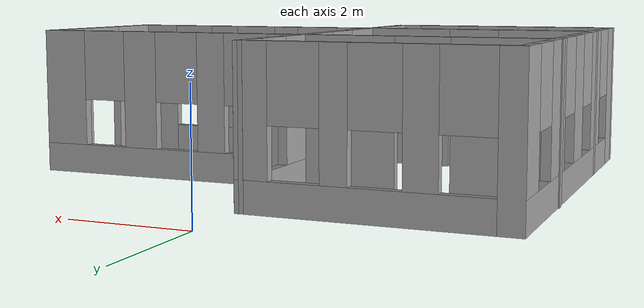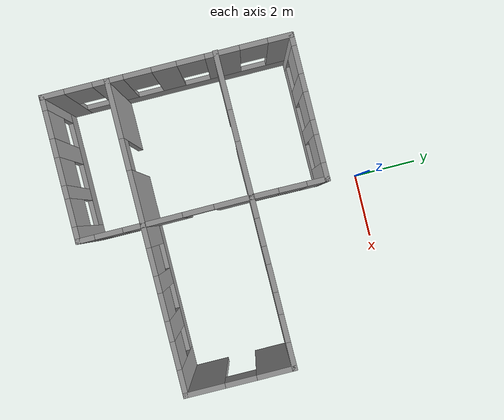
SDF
<?xml version='1.0'?>
<sdf version='1.6'>
  <model name='office'>
    <pose frame=''>0.324943 -4.86965 0 0 -0 0</pose>
    <link name='Wall_10'>
      <pose frame=''>-4.46494 -0.000349 0 0 -0 1.5708</pose>
      <visual name='Wall_10_Visual_0'>
        <pose frame=''>-3.27003 0 1.25 0 -0 0</pose>
        <geometry>
          <box>
            <size>0.709946 0.15 2.5</size>
          </box>
        </geometry>
        <material>
          <script>
            <uri>file://media/materials/scripts/gazebo.material</uri>
            <name>Gazebo/Grey</name>
          </script>
          <ambient>1 1 1 1</ambient>
        </material>
        <meta>
          <layer>0</layer>
        </meta>
      </visual>
      <collision name='Wall_10_Collision_0'>
        <geometry>
          <box>
            <size>0.709946 0.15 2.5</size>
          </box>
        </geometry>
        <pose frame=''>-3.27003 0 1.25 0 -0 0</pose>
      </collision>
      <visual name='Wall_10_Visual_1'>
        <pose frame=''>0.354973 0 0.25 0 -0 0</pose>
        <geometry>
          <box>
            <size>6.54005 0.15 0.5</size>
          </box>
        </geometry>
        <material>
          <script>
            <uri>file://media/materials/scripts/gazebo.material</uri>
            <name>Gazebo/Grey</name>
          </script>
          <ambient>1 1 1 1</ambient>
        </material>
        <meta>
          <layer>0</layer>
        </meta>
      </visual>
      <collision name='Wall_10_Collision_1'>
        <geometry>
          <box>
            <size>6.54005 0.15 0.5</size>
          </box>
        </geometry>
        <pose frame=''>0.354973 0 0.25 0 -0 0</pose>
      </collision>
      <visual name='Wall_10_Visual_2'>
        <pose frame=''>-1.67555 0 1.5 0 -0 0</pose>
        <geometry>
          <box>
            <size>0.879 0.15 2</size>
          </box>
        </geometry>
        <material>
          <script>
            <uri>file://media/materials/scripts/gazebo.material</uri>
            <name>Gazebo/Grey</name>
          </script>
          <ambient>1 1 1 1</ambient>
        </material>
        <meta>
          <layer>0</layer>
        </meta>
      </visual>
      <collision name='Wall_10_Collision_2'>
        <geometry>
          <box>
            <size>0.879 0.15 2</size>
          </box>
        </geometry>
        <pose frame=''>-1.67555 0 1.5 0 -0 0</pose>
      </collision>
      <visual name='Wall_10_Visual_3'>
        <pose frame=''>-0.077054 0 1.5 0 -0 0</pose>
        <geometry>
          <box>
            <size>0.718 0.15 2</size>
          </box>
        </geometry>
        <material>
          <script>
            <uri>file://media/materials/scripts/gazebo.material</uri>
            <name>Gazebo/Grey</name>
          </script>
          <ambient>1 1 1 1</ambient>
        </material>
        <meta>
          <layer>0</layer>
        </meta>
      </visual>
      <collision name='Wall_10_Collision_3'>
        <geometry>
          <box>
            <size>0.718 0.15 2</size>
          </box>
        </geometry>
        <pose frame=''>-0.077054 0 1.5 0 -0 0</pose>
      </collision>
      <visual name='Wall_10_Visual_4'>
        <pose frame=''>1.57895 0 1.5 0 -0 0</pose>
        <geometry>
          <box>
            <size>0.994 0.15 2</size>
          </box>
        </geometry>
        <material>
          <script>
            <uri>file://media/materials/scripts/gazebo.material</uri>
            <name>Gazebo/Grey</name>
          </script>
          <ambient>1 1 1 1</ambient>
        </material>
        <meta>
          <layer>0</layer>
        </meta>
      </visual>
      <collision name='Wall_10_Collision_4'>
        <geometry>
          <box>
            <size>0.994 0.15 2</size>
          </box>
        </geometry>
        <pose frame=''>1.57895 0 1.5 0 -0 0</pose>
      </collision>
      <visual name='Wall_10_Visual_5'>
        <pose frame=''>3.25047 0 1.5 0 -0 0</pose>
        <geometry>
          <box>
            <size>0.749054 0.15 2</size>
          </box>
        </geometry>
        <material>
          <script>
            <uri>file://media/materials/scripts/gazebo.material</uri>
            <name>Gazebo/Grey</name>
          </script>
          <ambient>1 1 1 1</ambient>
        </material>
        <meta>
          <layer>0</layer>
        </meta>
      </visual>
      <collision name='Wall_10_Collision_5'>
        <geometry>
          <box>
            <size>0.749054 0.15 2</size>
          </box>
        </geometry>
        <pose frame=''>3.25047 0 1.5 0 -0 0</pose>
      </collision>
      <visual name='Wall_10_Visual_6'>
        <pose frame=''>-2.51505 0 1.9 0 -0 0</pose>
        <geometry>
          <box>
            <size>0.8 0.15 1.2</size>
          </box>
        </geometry>
        <material>
          <script>
            <uri>file://media/materials/scripts/gazebo.material</uri>
            <name>Gazebo/Grey</name>
          </script>
          <ambient>1 1 1 1</ambient>
        </material>
        <meta>
          <layer>0</layer>
        </meta>
      </visual>
      <collision name='Wall_10_Collision_6'>
        <geometry>
          <box>
            <size>0.8 0.15 1.2</size>
          </box>
        </geometry>
        <pose frame=''>-2.51505 0 1.9 0 -0 0</pose>
      </collision>
      <visual name='Wall_10_Visual_7'>
        <pose frame=''>-0.836054 0 1.9 0 -0 0</pose>
        <geometry>
          <box>
            <size>0.8 0.15 1.2</size>
          </box>
        </geometry>
        <material>
          <script>
            <uri>file://media/materials/scripts/gazebo.material</uri>
            <name>Gazebo/Grey</name>
          </script>
          <ambient>1 1 1 1</ambient>
        </material>
        <meta>
          <layer>0</layer>
        </meta>
      </visual>
      <collision name='Wall_10_Collision_7'>
        <geometry>
          <box>
            <size>0.8 0.15 1.2</size>
          </box>
        </geometry>
        <pose frame=''>-0.836054 0 1.9 0 -0 0</pose>
      </collision>
      <visual name='Wall_10_Visual_8'>
        <pose frame=''>0.681946 0 1.9 0 -0 0</pose>
        <geometry>
          <box>
            <size>0.8 0.15 1.2</size>
          </box>
        </geometry>
        <material>
          <script>
            <uri>file://media/materials/scripts/gazebo.material</uri>
            <name>Gazebo/Grey</name>
          </script>
          <ambient>1 1 1 1</ambient>
        </material>
        <meta>
          <layer>0</layer>
        </meta>
      </visual>
      <collision name='Wall_10_Collision_8'>
        <geometry>
          <box>
            <size>0.8 0.15 1.2</size>
          </box>
        </geometry>
        <pose frame=''>0.681946 0 1.9 0 -0 0</pose>
      </collision>
      <visual name='Wall_10_Visual_9'>
        <pose frame=''>2.47595 0 1.9 0 -0 0</pose>
        <geometry>
          <box>
            <size>0.8 0.15 1.2</size>
          </box>
        </geometry>
        <material>
          <script>
            <uri>file://media/materials/scripts/gazebo.material</uri>
            <name>Gazebo/Grey</name>
          </script>
          <ambient>1 1 1 1</ambient>
        </material>
        <meta>
          <layer>0</layer>
        </meta>
      </visual>
      <collision name='Wall_10_Collision_9'>
        <geometry>
          <box>
            <size>0.8 0.15 1.2</size>
          </box>
        </geometry>
        <pose frame=''>2.47595 0 1.9 0 -0 0</pose>
      </collision>
    </link>
    <link name='Wall_12'>
      <pose frame=''>-2.41494 3.54965 0 0 -0 0</pose>
      <visual name='Wall_12_Visual_0'>
        <pose frame=''>-1.93281 0 1.25 0 -0 0</pose>
        <geometry>
          <box>
            <size>0.38438 0.15 2.5</size>
          </box>
        </geometry>
        <material>
          <script>
            <uri>file://media/materials/scripts/gazebo.material</uri>
            <name>Gazebo/Grey</name>
          </script>
          <ambient>1 1 1 1</ambient>
        </material>
        <meta>
          <layer>0</layer>
        </meta>
      </visual>
      <collision name='Wall_12_Collision_0'>
        <geometry>
          <box>
            <size>0.38438 0.15 2.5</size>
          </box>
        </geometry>
        <pose frame=''>-1.93281 0 1.25 0 -0 0</pose>
      </collision>
      <visual name='Wall_12_Visual_1'>
        <pose frame=''>0.19219 0 0.25 0 -0 0</pose>
        <geometry>
          <box>
            <size>3.86562 0.15 0.5</size>
          </box>
        </geometry>
        <material>
          <script>
            <uri>file://media/materials/scripts/gazebo.material</uri>
            <name>Gazebo/Grey</name>
          </script>
          <ambient>1 1 1 1</ambient>
        </material>
        <meta>
          <layer>0</layer>
        </meta>
      </visual>
      <collision name='Wall_12_Collision_1'>
        <geometry>
          <box>
            <size>3.86562 0.15 0.5</size>
          </box>
        </geometry>
        <pose frame=''>0.19219 0 0.25 0 -0 0</pose>
      </collision>
      <visual name='Wall_12_Visual_2'>
        <pose frame=''>-0.68512 0 1.5 0 -0 0</pose>
        <geometry>
          <box>
            <size>0.511 0.15 2</size>
          </box>
        </geometry>
        <material>
          <script>
            <uri>file://media/materials/scripts/gazebo.material</uri>
            <name>Gazebo/Grey</name>
          </script>
          <ambient>1 1 1 1</ambient>
        </material>
        <meta>
          <layer>0</layer>
        </meta>
      </visual>
      <collision name='Wall_12_Collision_2'>
        <geometry>
          <box>
            <size>0.511 0.15 2</size>
          </box>
        </geometry>
        <pose frame=''>-0.68512 0 1.5 0 -0 0</pose>
      </collision>
      <visual name='Wall_12_Visual_3'>
        <pose frame=''>0.57988 0 1.5 0 -0 0</pose>
        <geometry>
          <box>
            <size>0.419 0.15 2</size>
          </box>
        </geometry>
        <material>
          <script>
            <uri>file://media/materials/scripts/gazebo.material</uri>
            <name>Gazebo/Grey</name>
          </script>
          <ambient>1 1 1 1</ambient>
        </material>
        <meta>
          <layer>0</layer>
        </meta>
      </visual>
      <collision name='Wall_12_Collision_3'>
        <geometry>
          <box>
            <size>0.419 0.15 2</size>
          </box>
        </geometry>
        <pose frame=''>0.57988 0 1.5 0 -0 0</pose>
      </collision>
      <visual name='Wall_12_Visual_4'>
        <pose frame=''>1.85719 0 1.5 0 -0 0</pose>
        <geometry>
          <box>
            <size>0.53562 0.15 2</size>
          </box>
        </geometry>
        <material>
          <script>
            <uri>file://media/materials/scripts/gazebo.material</uri>
            <name>Gazebo/Grey</name>
          </script>
          <ambient>1 1 1 1</ambient>
        </material>
        <meta>
          <layer>0</layer>
        </meta>
      </visual>
      <collision name='Wall_12_Collision_4'>
        <geometry>
          <box>
            <size>0.53562 0.15 2</size>
          </box>
        </geometry>
        <pose frame=''>1.85719 0 1.5 0 -0 0</pose>
      </collision>
      <visual name='Wall_12_Visual_5'>
        <pose frame=''>-1.34062 0 1.9 0 -0 0</pose>
        <geometry>
          <box>
            <size>0.8 0.15 1.2</size>
          </box>
        </geometry>
        <material>
          <script>
            <uri>file://media/materials/scripts/gazebo.material</uri>
            <name>Gazebo/Grey</name>
          </script>
          <ambient>1 1 1 1</ambient>
        </material>
        <meta>
          <layer>0</layer>
        </meta>
      </visual>
      <collision name='Wall_12_Collision_5'>
        <geometry>
          <box>
            <size>0.8 0.15 1.2</size>
          </box>
        </geometry>
        <pose frame=''>-1.34062 0 1.9 0 -0 0</pose>
      </collision>
      <visual name='Wall_12_Visual_6'>
        <pose frame=''>-0.02962 0 1.9 0 -0 0</pose>
        <geometry>
          <box>
            <size>0.8 0.15 1.2</size>
          </box>
        </geometry>
        <material>
          <script>
            <uri>file://media/materials/scripts/gazebo.material</uri>
            <name>Gazebo/Grey</name>
          </script>
          <ambient>1 1 1 1</ambient>
        </material>
        <meta>
          <layer>0</layer>
        </meta>
      </visual>
      <collision name='Wall_12_Collision_6'>
        <geometry>
          <box>
            <size>0.8 0.15 1.2</size>
          </box>
        </geometry>
        <pose frame=''>-0.02962 0 1.9 0 -0 0</pose>
      </collision>
      <visual name='Wall_12_Visual_7'>
        <pose frame=''>1.18938 0 1.9 0 -0 0</pose>
        <geometry>
          <box>
            <size>0.8 0.15 1.2</size>
          </box>
        </geometry>
        <material>
          <script>
            <uri>file://media/materials/scripts/gazebo.material</uri>
            <name>Gazebo/Grey</name>
          </script>
          <ambient>1 1 1 1</ambient>
        </material>
        <meta>
          <layer>0</layer>
        </meta>
      </visual>
      <collision name='Wall_12_Collision_7'>
        <geometry>
          <box>
            <size>0.8 0.15 1.2</size>
          </box>
        </geometry>
        <pose frame=''>1.18938 0 1.9 0 -0 0</pose>
      </collision>
    </link>
    <link name='Wall_14'>
      <pose frame=''>-0.375 2.47465 0 0 0 -1.58015</pose>
      <visual name='Wall_14_Visual_0'>
        <pose frame=''>-0.821604 0 1.25 0 -0 0</pose>
        <geometry>
          <box>
            <size>0.656885 0.15 2.5</size>
          </box>
        </geometry>
        <material>
          <script>
            <uri>file://media/materials/scripts/gazebo.material</uri>
            <name>Gazebo/Grey</name>
          </script>
          <ambient>1 1 1 1</ambient>
        </material>
        <meta>
          <layer>0</layer>
        </meta>
      </visual>
      <collision name='Wall_14_Collision_0'>
        <geometry>
          <box>
            <size>0.656885 0.15 2.5</size>
          </box>
        </geometry>
        <pose frame=''>-0.821604 0 1.25 0 -0 0</pose>
      </collision>
      <visual name='Wall_14_Visual_1'>
        <pose frame=''>0.328443 0 0.25 0 -0 0</pose>
        <geometry>
          <box>
            <size>1.64321 0.15 0.5</size>
          </box>
        </geometry>
        <material>
          <script>
            <uri>file://media/materials/scripts/gazebo.material</uri>
            <name>Gazebo/Grey</name>
          </script>
          <ambient>1 1 1 1</ambient>
        </material>
        <meta>
          <layer>0</layer>
        </meta>
      </visual>
      <collision name='Wall_14_Collision_1'>
        <geometry>
          <box>
            <size>1.64321 0.15 0.5</size>
          </box>
        </geometry>
        <pose frame=''>0.328443 0 0.25 0 -0 0</pose>
      </collision>
      <visual name='Wall_14_Visual_2'>
        <pose frame=''>0.728443 0 1.5 0 -0 0</pose>
        <geometry>
          <box>
            <size>0.843209 0.15 2</size>
          </box>
        </geometry>
        <material>
          <script>
            <uri>file://media/materials/scripts/gazebo.material</uri>
            <name>Gazebo/Grey</name>
          </script>
          <ambient>1 1 1 1</ambient>
        </material>
        <meta>
          <layer>0</layer>
        </meta>
      </visual>
      <collision name='Wall_14_Collision_2'>
        <geometry>
          <box>
            <size>0.843209 0.15 2</size>
          </box>
        </geometry>
        <pose frame=''>0.728443 0 1.5 0 -0 0</pose>
      </collision>
      <visual name='Wall_14_Visual_3'>
        <pose frame=''>-0.093162 0 1.9 0 -0 0</pose>
        <geometry>
          <box>
            <size>0.8 0.15 1.2</size>
          </box>
        </geometry>
        <material>
          <script>
            <uri>file://media/materials/scripts/gazebo.material</uri>
            <name>Gazebo/Grey</name>
          </script>
          <ambient>1 1 1 1</ambient>
        </material>
        <meta>
          <layer>0</layer>
        </meta>
      </visual>
      <collision name='Wall_14_Collision_3'>
        <geometry>
          <box>
            <size>0.8 0.15 1.2</size>
          </box>
        </geometry>
        <pose frame=''>-0.093162 0 1.9 0 -0 0</pose>
      </collision>
    </link>
    <link name='Wall_16'>
      <pose frame=''>-0.375 -0.150349 0 0 -0 1.57729</pose>
      <visual name='Wall_16_Visual_0'>
        <pose frame=''>-1.02427 0 1.25 0 -0 0</pose>
        <geometry>
          <box>
            <size>1.20153 0.15 2.5</size>
          </box>
        </geometry>
        <material>
          <script>
            <uri>file://media/materials/scripts/gazebo.material</uri>
            <name>Gazebo/Grey</name>
          </script>
          <ambient>1 1 1 1</ambient>
        </material>
        <meta>
          <layer>0</layer>
        </meta>
      </visual>
      <collision name='Wall_16_Collision_0'>
        <geometry>
          <box>
            <size>1.20153 0.15 2.5</size>
          </box>
        </geometry>
        <pose frame=''>-1.02427 0 1.25 0 -0 0</pose>
      </collision>
      <visual name='Wall_16_Visual_1'>
        <pose frame=''>1.05076 0 1.25 0 -0 0</pose>
        <geometry>
          <box>
            <size>1.14854 0.15 2.5</size>
          </box>
        </geometry>
        <material>
          <script>
            <uri>file://media/materials/scripts/gazebo.material</uri>
            <name>Gazebo/Grey</name>
          </script>
          <ambient>1 1 1 1</ambient>
        </material>
        <meta>
          <layer>0</layer>
        </meta>
      </visual>
      <collision name='Wall_16_Collision_1'>
        <geometry>
          <box>
            <size>1.14854 0.15 2.5</size>
          </box>
        </geometry>
        <pose frame=''>1.05076 0 1.25 0 -0 0</pose>
      </collision>
      <visual name='Wall_16_Visual_2'>
        <pose frame=''>0.026496 0 2.25 0 -0 0</pose>
        <geometry>
          <box>
            <size>0.9 0.15 0.5</size>
          </box>
        </geometry>
        <material>
          <script>
            <uri>file://media/materials/scripts/gazebo.material</uri>
            <name>Gazebo/Grey</name>
          </script>
          <ambient>1 1 1 1</ambient>
        </material>
        <meta>
          <layer>0</layer>
        </meta>
      </visual>
      <collision name='Wall_16_Collision_2'>
        <geometry>
          <box>
            <size>0.9 0.15 0.5</size>
          </box>
        </geometry>
        <pose frame=''>0.026496 0 2.25 0 -0 0</pose>
      </collision>
    </link>
    <link name='Wall_17'>
      <pose frame=''>-2.43506 1.39965 0 0 -0 3.14159</pose>
      <visual name='Wall_17_Visual_0'>
        <pose frame=''>-1.29425 0 1.25 0 -0 0</pose>
        <geometry>
          <box>
            <size>1.66151 0.15 2.5</size>
          </box>
        </geometry>
        <material>
          <script>
            <uri>file://media/materials/scripts/gazebo.material</uri>
            <name>Gazebo/Grey</name>
          </script>
          <ambient>1 1 1 1</ambient>
        </material>
        <meta>
          <layer>0</layer>
        </meta>
      </visual>
      <collision name='Wall_17_Collision_0'>
        <geometry>
          <box>
            <size>1.66151 0.15 2.5</size>
          </box>
        </geometry>
        <pose frame=''>-1.29425 0 1.25 0 -0 0</pose>
      </collision>
      <visual name='Wall_17_Visual_1'>
        <pose frame=''>1.28075 0 1.25 0 -0 0</pose>
        <geometry>
          <box>
            <size>1.68849 0.15 2.5</size>
          </box>
        </geometry>
        <material>
          <script>
            <uri>file://media/materials/scripts/gazebo.material</uri>
            <name>Gazebo/Grey</name>
          </script>
          <ambient>1 1 1 1</ambient>
        </material>
        <meta>
          <layer>0</layer>
        </meta>
      </visual>
      <collision name='Wall_17_Collision_1'>
        <geometry>
          <box>
            <size>1.68849 0.15 2.5</size>
          </box>
        </geometry>
        <pose frame=''>1.28075 0 1.25 0 -0 0</pose>
      </collision>
      <visual name='Wall_17_Visual_2'>
        <pose frame=''>-0.013494 0 2.25 0 -0 0</pose>
        <geometry>
          <box>
            <size>0.9 0.15 0.5</size>
          </box>
        </geometry>
        <material>
          <script>
            <uri>file://media/materials/scripts/gazebo.material</uri>
            <name>Gazebo/Grey</name>
          </script>
          <ambient>1 1 1 1</ambient>
        </material>
        <meta>
          <layer>0</layer>
        </meta>
      </visual>
      <collision name='Wall_17_Collision_2'>
        <geometry>
          <box>
            <size>0.9 0.15 0.5</size>
          </box>
        </geometry>
        <pose frame=''>-0.013494 0 2.25 0 -0 0</pose>
      </collision>
    </link>
    <link name='Wall_19'>
      <pose frame=''>-2.41494 -1.70035 0 0 -0 3.14159</pose>
      <visual name='Wall_19_Visual_0'>
        <pose frame=''>-1.30719 0 1.25 0 -0 0</pose>
        <geometry>
          <box>
            <size>1.63562 0.15 2.5</size>
          </box>
        </geometry>
        <material>
          <script>
            <uri>file://media/materials/scripts/gazebo.material</uri>
            <name>Gazebo/Grey</name>
          </script>
          <ambient>1 1 1 1</ambient>
        </material>
        <meta>
          <layer>0</layer>
        </meta>
      </visual>
      <collision name='Wall_19_Collision_0'>
        <geometry>
          <box>
            <size>1.63562 0.15 2.5</size>
          </box>
        </geometry>
        <pose frame=''>-1.30719 0 1.25 0 -0 0</pose>
      </collision>
      <visual name='Wall_19_Visual_1'>
        <pose frame=''>1.26781 0 1.25 0 -0 0</pose>
        <geometry>
          <box>
            <size>1.71438 0.15 2.5</size>
          </box>
        </geometry>
        <material>
          <script>
            <uri>file://media/materials/scripts/gazebo.material</uri>
            <name>Gazebo/Grey</name>
          </script>
          <ambient>1 1 1 1</ambient>
        </material>
        <meta>
          <layer>0</layer>
        </meta>
      </visual>
      <collision name='Wall_19_Collision_1'>
        <geometry>
          <box>
            <size>1.71438 0.15 2.5</size>
          </box>
        </geometry>
        <pose frame=''>1.26781 0 1.25 0 -0 0</pose>
      </collision>
      <visual name='Wall_19_Visual_2'>
        <pose frame=''>-0.03938 0 2.25 0 -0 0</pose>
        <geometry>
          <box>
            <size>0.9 0.15 0.5</size>
          </box>
        </geometry>
        <material>
          <script>
            <uri>file://media/materials/scripts/gazebo.material</uri>
            <name>Gazebo/Grey</name>
          </script>
          <ambient>1 1 1 1</ambient>
        </material>
        <meta>
          <layer>0</layer>
        </meta>
      </visual>
      <collision name='Wall_19_Collision_2'>
        <geometry>
          <box>
            <size>0.9 0.15 0.5</size>
          </box>
        </geometry>
        <pose frame=''>-0.03938 0 2.25 0 -0 0</pose>
      </collision>
    </link>
    <link name='Wall_3'>
      <pose frame=''>2.05 1.39965 0 0 -0 0</pose>
      <visual name='Wall_3_Visual_0'>
        <pose frame=''>-2.17281 0 1.25 0 -0 0</pose>
        <geometry>
          <box>
            <size>0.674494 0.15 2.5</size>
          </box>
        </geometry>
        <material>
          <script>
            <uri>file://media/materials/scripts/gazebo.material</uri>
            <name>Gazebo/Grey</name>
          </script>
          <ambient>1 1 1 1</ambient>
        </material>
        <meta>
          <layer>0</layer>
        </meta>
      </visual>
      <collision name='Wall_3_Collision_0'>
        <geometry>
          <box>
            <size>0.674494 0.15 2.5</size>
          </box>
        </geometry>
        <pose frame=''>-2.17281 0 1.25 0 -0 0</pose>
      </collision>
      <visual name='Wall_3_Visual_1'>
        <pose frame=''>0.337247 0 0.25 0 -0 0</pose>
        <geometry>
          <box>
            <size>4.34562 0.15 0.5</size>
          </box>
        </geometry>
        <material>
          <script>
            <uri>file://media/materials/scripts/gazebo.material</uri>
            <name>Gazebo/Grey</name>
          </script>
          <ambient>1 1 1 1</ambient>
        </material>
        <meta>
          <layer>0</layer>
        </meta>
      </visual>
      <collision name='Wall_3_Collision_1'>
        <geometry>
          <box>
            <size>4.34562 0.15 0.5</size>
          </box>
        </geometry>
        <pose frame=''>0.337247 0 0.25 0 -0 0</pose>
      </collision>
      <visual name='Wall_3_Visual_2'>
        <pose frame=''>-0.780063 0 1.5 0 -0 0</pose>
        <geometry>
          <box>
            <size>0.511 0.15 2</size>
          </box>
        </geometry>
        <material>
          <script>
            <uri>file://media/materials/scripts/gazebo.material</uri>
            <name>Gazebo/Grey</name>
          </script>
          <ambient>1 1 1 1</ambient>
        </material>
        <meta>
          <layer>0</layer>
        </meta>
      </visual>
      <collision name='Wall_3_Collision_2'>
        <geometry>
          <box>
            <size>0.511 0.15 2</size>
          </box>
        </geometry>
        <pose frame=''>-0.780063 0 1.5 0 -0 0</pose>
      </collision>
      <visual name='Wall_3_Visual_3'>
        <pose frame=''>0.588437 0 1.5 0 -0 0</pose>
        <geometry>
          <box>
            <size>0.626 0.15 2</size>
          </box>
        </geometry>
        <material>
          <script>
            <uri>file://media/materials/scripts/gazebo.material</uri>
            <name>Gazebo/Grey</name>
          </script>
          <ambient>1 1 1 1</ambient>
        </material>
        <meta>
          <layer>0</layer>
        </meta>
      </visual>
      <collision name='Wall_3_Collision_3'>
        <geometry>
          <box>
            <size>0.626 0.15 2</size>
          </box>
        </geometry>
        <pose frame=''>0.588437 0 1.5 0 -0 0</pose>
      </collision>
      <visual name='Wall_3_Visual_4'>
        <pose frame=''>2.10575 0 1.5 0 -0 0</pose>
        <geometry>
          <box>
            <size>0.80862 0.15 2</size>
          </box>
        </geometry>
        <material>
          <script>
            <uri>file://media/materials/scripts/gazebo.material</uri>
            <name>Gazebo/Grey</name>
          </script>
          <ambient>1 1 1 1</ambient>
        </material>
        <meta>
          <layer>0</layer>
        </meta>
      </visual>
      <collision name='Wall_3_Collision_4'>
        <geometry>
          <box>
            <size>0.80862 0.15 2</size>
          </box>
        </geometry>
        <pose frame=''>2.10575 0 1.5 0 -0 0</pose>
      </collision>
      <visual name='Wall_3_Visual_5'>
        <pose frame=''>-1.43556 0 1.9 0 -0 0</pose>
        <geometry>
          <box>
            <size>0.8 0.15 1.2</size>
          </box>
        </geometry>
        <material>
          <script>
            <uri>file://media/materials/scripts/gazebo.material</uri>
            <name>Gazebo/Grey</name>
          </script>
          <ambient>1 1 1 1</ambient>
        </material>
        <meta>
          <layer>0</layer>
        </meta>
      </visual>
      <collision name='Wall_3_Collision_5'>
        <geometry>
          <box>
            <size>0.8 0.15 1.2</size>
          </box>
        </geometry>
        <pose frame=''>-1.43556 0 1.9 0 -0 0</pose>
      </collision>
      <visual name='Wall_3_Visual_6'>
        <pose frame=''>-0.124563 0 1.9 0 -0 0</pose>
        <geometry>
          <box>
            <size>0.8 0.15 1.2</size>
          </box>
        </geometry>
        <material>
          <script>
            <uri>file://media/materials/scripts/gazebo.material</uri>
            <name>Gazebo/Grey</name>
          </script>
          <ambient>1 1 1 1</ambient>
        </material>
        <meta>
          <layer>0</layer>
        </meta>
      </visual>
      <collision name='Wall_3_Collision_6'>
        <geometry>
          <box>
            <size>0.8 0.15 1.2</size>
          </box>
        </geometry>
        <pose frame=''>-0.124563 0 1.9 0 -0 0</pose>
      </collision>
      <visual name='Wall_3_Visual_7'>
        <pose frame=''>1.30144 0 1.9 0 -0 0</pose>
        <geometry>
          <box>
            <size>0.8 0.15 1.2</size>
          </box>
        </geometry>
        <material>
          <script>
            <uri>file://media/materials/scripts/gazebo.material</uri>
            <name>Gazebo/Grey</name>
          </script>
          <ambient>1 1 1 1</ambient>
        </material>
        <meta>
          <layer>0</layer>
        </meta>
      </visual>
      <collision name='Wall_3_Collision_7'>
        <geometry>
          <box>
            <size>0.8 0.15 1.2</size>
          </box>
        </geometry>
        <pose frame=''>1.30144 0 1.9 0 -0 0</pose>
      </collision>
    </link>
    <link name='Wall_4'>
      <pose frame=''>4.48506 -0.150349 0 0 0 -1.5708</pose>
      <visual name='Wall_4_Visual_0'>
        <pose frame=''>-1.05097 0 1.25 0 -0 0</pose>
        <geometry>
          <box>
            <size>1.14805 0.15 2.5</size>
          </box>
        </geometry>
        <material>
          <script>
            <uri>file://media/materials/scripts/gazebo.material</uri>
            <name>Gazebo/Grey</name>
          </script>
          <ambient>1 1 1 1</ambient>
        </material>
        <meta>
          <layer>0</layer>
        </meta>
      </visual>
      <collision name='Wall_4_Collision_0'>
        <geometry>
          <box>
            <size>1.14805 0.15 2.5</size>
          </box>
        </geometry>
        <pose frame=''>-1.05097 0 1.25 0 -0 0</pose>
      </collision>
      <visual name='Wall_4_Visual_1'>
        <pose frame=''>1.02403 0 1.25 0 -0 0</pose>
        <geometry>
          <box>
            <size>1.20195 0.15 2.5</size>
          </box>
        </geometry>
        <material>
          <script>
            <uri>file://media/materials/scripts/gazebo.material</uri>
            <name>Gazebo/Grey</name>
          </script>
          <ambient>1 1 1 1</ambient>
        </material>
        <meta>
          <layer>0</layer>
        </meta>
      </visual>
      <collision name='Wall_4_Collision_1'>
        <geometry>
          <box>
            <size>1.20195 0.15 2.5</size>
          </box>
        </geometry>
        <pose frame=''>1.02403 0 1.25 0 -0 0</pose>
      </collision>
      <visual name='Wall_4_Visual_2'>
        <pose frame=''>-0.026947 0 2.25 0 -0 0</pose>
        <geometry>
          <box>
            <size>0.9 0.15 0.5</size>
          </box>
        </geometry>
        <material>
          <script>
            <uri>file://media/materials/scripts/gazebo.material</uri>
            <name>Gazebo/Grey</name>
          </script>
          <ambient>1 1 1 1</ambient>
        </material>
        <meta>
          <layer>0</layer>
        </meta>
      </visual>
      <collision name='Wall_4_Collision_2'>
        <geometry>
          <box>
            <size>0.9 0.15 0.5</size>
          </box>
        </geometry>
        <pose frame=''>-0.026947 0 2.25 0 -0 0</pose>
      </collision>
    </link>
    <link name='Wall_5'>
      <pose frame=''>2.06006 -1.70035 0 0 -0 3.14159</pose>
      <visual name='Wall_5_Visual_0'>
        <pose frame=''>-2.09569 0 1.25 0 -0 0</pose>
        <geometry>
          <box>
            <size>0.80862 0.15 2.5</size>
          </box>
        </geometry>
        <material>
          <script>
            <uri>file://media/materials/scripts/gazebo.material</uri>
            <name>Gazebo/Grey</name>
          </script>
          <ambient>1 1 1 1</ambient>
        </material>
        <meta>
          <layer>0</layer>
        </meta>
      </visual>
      <collision name='Wall_5_Collision_0'>
        <geometry>
          <box>
            <size>0.80862 0.15 2.5</size>
          </box>
        </geometry>
        <pose frame=''>-2.09569 0 1.25 0 -0 0</pose>
      </collision>
      <visual name='Wall_5_Visual_1'>
        <pose frame=''>0.40431 0 0.25 0 -0 0</pose>
        <geometry>
          <box>
            <size>4.19138 0.15 0.5</size>
          </box>
        </geometry>
        <material>
          <script>
            <uri>file://media/materials/scripts/gazebo.material</uri>
            <name>Gazebo/Grey</name>
          </script>
          <ambient>1 1 1 1</ambient>
        </material>
        <meta>
          <layer>0</layer>
        </meta>
      </visual>
      <collision name='Wall_5_Collision_1'>
        <geometry>
          <box>
            <size>4.19138 0.15 0.5</size>
          </box>
        </geometry>
        <pose frame=''>0.40431 0 0.25 0 -0 0</pose>
      </collision>
      <visual name='Wall_5_Visual_2'>
        <pose frame=''>-0.60138 0 1.5 0 -0 0</pose>
        <geometry>
          <box>
            <size>0.58 0.15 2</size>
          </box>
        </geometry>
        <material>
          <script>
            <uri>file://media/materials/scripts/gazebo.material</uri>
            <name>Gazebo/Grey</name>
          </script>
          <ambient>1 1 1 1</ambient>
        </material>
        <meta>
          <layer>0</layer>
        </meta>
      </visual>
      <collision name='Wall_5_Collision_2'>
        <geometry>
          <box>
            <size>0.58 0.15 2</size>
          </box>
        </geometry>
        <pose frame=''>-0.60138 0 1.5 0 -0 0</pose>
      </collision>
      <visual name='Wall_5_Visual_3'>
        <pose frame=''>0.73262 0 1.5 0 -0 0</pose>
        <geometry>
          <box>
            <size>0.488 0.15 2</size>
          </box>
        </geometry>
        <material>
          <script>
            <uri>file://media/materials/scripts/gazebo.material</uri>
            <name>Gazebo/Grey</name>
          </script>
          <ambient>1 1 1 1</ambient>
        </material>
        <meta>
          <layer>0</layer>
        </meta>
      </visual>
      <collision name='Wall_5_Collision_3'>
        <geometry>
          <box>
            <size>0.488 0.15 2</size>
          </box>
        </geometry>
        <pose frame=''>0.73262 0 1.5 0 -0 0</pose>
      </collision>
      <visual name='Wall_5_Visual_4'>
        <pose frame=''>2.13831 0 1.5 0 -0 0</pose>
        <geometry>
          <box>
            <size>0.72338 0.15 2</size>
          </box>
        </geometry>
        <material>
          <script>
            <uri>file://media/materials/scripts/gazebo.material</uri>
            <name>Gazebo/Grey</name>
          </script>
          <ambient>1 1 1 1</ambient>
        </material>
        <meta>
          <layer>0</layer>
        </meta>
      </visual>
      <collision name='Wall_5_Collision_4'>
        <geometry>
          <box>
            <size>0.72338 0.15 2</size>
          </box>
        </geometry>
        <pose frame=''>2.13831 0 1.5 0 -0 0</pose>
      </collision>
      <visual name='Wall_5_Visual_5'>
        <pose frame=''>-1.29138 0 1.9 0 -0 0</pose>
        <geometry>
          <box>
            <size>0.8 0.15 1.2</size>
          </box>
        </geometry>
        <material>
          <script>
            <uri>file://media/materials/scripts/gazebo.material</uri>
            <name>Gazebo/Grey</name>
          </script>
          <ambient>1 1 1 1</ambient>
        </material>
        <meta>
          <layer>0</layer>
        </meta>
      </visual>
      <collision name='Wall_5_Collision_5'>
        <geometry>
          <box>
            <size>0.8 0.15 1.2</size>
          </box>
        </geometry>
        <pose frame=''>-1.29138 0 1.9 0 -0 0</pose>
      </collision>
      <visual name='Wall_5_Visual_6'>
        <pose frame=''>0.08862 0 1.9 0 -0 0</pose>
        <geometry>
          <box>
            <size>0.8 0.15 1.2</size>
          </box>
        </geometry>
        <material>
          <script>
            <uri>file://media/materials/scripts/gazebo.material</uri>
            <name>Gazebo/Grey</name>
          </script>
          <ambient>1 1 1 1</ambient>
        </material>
        <meta>
          <layer>0</layer>
        </meta>
      </visual>
      <collision name='Wall_5_Collision_6'>
        <geometry>
          <box>
            <size>0.8 0.15 1.2</size>
          </box>
        </geometry>
        <pose frame=''>0.08862 0 1.9 0 -0 0</pose>
      </collision>
      <visual name='Wall_5_Visual_7'>
        <pose frame=''>1.37662 0 1.9 0 -0 0</pose>
        <geometry>
          <box>
            <size>0.8 0.15 1.2</size>
          </box>
        </geometry>
        <material>
          <script>
            <uri>file://media/materials/scripts/gazebo.material</uri>
            <name>Gazebo/Grey</name>
          </script>
          <ambient>1 1 1 1</ambient>
        </material>
        <meta>
          <layer>0</layer>
        </meta>
      </visual>
      <collision name='Wall_5_Collision_7'>
        <geometry>
          <box>
            <size>0.8 0.15 1.2</size>
          </box>
        </geometry>
        <pose frame=''>1.37662 0 1.9 0 -0 0</pose>
      </collision>
    </link>
    <link name='Wall_8'>
      <pose frame=''>-0.364943 -2.62535 0 0 0 -1.5708</pose>
      <visual name='Wall_8_Visual_0'>
        <pose frame=''>-0.674473 0 1.25 0 -0 0</pose>
        <geometry>
          <box>
            <size>0.651054 0.15 2.5</size>
          </box>
        </geometry>
        <material>
          <script>
            <uri>file://media/materials/scripts/gazebo.material</uri>
            <name>Gazebo/Grey</name>
          </script>
          <ambient>1 1 1 1</ambient>
        </material>
        <meta>
          <layer>0</layer>
        </meta>
      </visual>
      <collision name='Wall_8_Collision_0'>
        <geometry>
          <box>
            <size>0.651054 0.15 2.5</size>
          </box>
        </geometry>
        <pose frame=''>-0.674473 0 1.25 0 -0 0</pose>
      </collision>
      <visual name='Wall_8_Visual_1'>
        <pose frame=''>0.325527 0 0.25 0 -0 0</pose>
        <geometry>
          <box>
            <size>1.34895 0.15 0.5</size>
          </box>
        </geometry>
        <material>
          <script>
            <uri>file://media/materials/scripts/gazebo.material</uri>
            <name>Gazebo/Grey</name>
          </script>
          <ambient>1 1 1 1</ambient>
        </material>
        <meta>
          <layer>0</layer>
        </meta>
      </visual>
      <collision name='Wall_8_Collision_1'>
        <geometry>
          <box>
            <size>1.34895 0.15 0.5</size>
          </box>
        </geometry>
        <pose frame=''>0.325527 0 0.25 0 -0 0</pose>
      </collision>
      <visual name='Wall_8_Visual_2'>
        <pose frame=''>0.725527 0 1.5 0 -0 0</pose>
        <geometry>
          <box>
            <size>0.548946 0.15 2</size>
          </box>
        </geometry>
        <material>
          <script>
            <uri>file://media/materials/scripts/gazebo.material</uri>
            <name>Gazebo/Grey</name>
          </script>
          <ambient>1 1 1 1</ambient>
        </material>
        <meta>
          <layer>0</layer>
        </meta>
      </visual>
      <collision name='Wall_8_Collision_2'>
        <geometry>
          <box>
            <size>0.548946 0.15 2</size>
          </box>
        </geometry>
        <pose frame=''>0.725527 0 1.5 0 -0 0</pose>
      </collision>
      <visual name='Wall_8_Visual_3'>
        <pose frame=''>0.051054 0 1.9 0 -0 0</pose>
        <geometry>
          <box>
            <size>0.8 0.15 1.2</size>
          </box>
        </geometry>
        <material>
          <script>
            <uri>file://media/materials/scripts/gazebo.material</uri>
            <name>Gazebo/Grey</name>
          </script>
          <ambient>1 1 1 1</ambient>
        </material>
        <meta>
          <layer>0</layer>
        </meta>
      </visual>
      <collision name='Wall_8_Collision_3'>
        <geometry>
          <box>
            <size>0.8 0.15 1.2</size>
          </box>
        </geometry>
        <pose frame=''>0.051054 0 1.9 0 -0 0</pose>
      </collision>
    </link>
    <link name='Wall_9'>
      <pose frame=''>-2.41494 -3.55035 0 0 -0 3.14159</pose>
      <visual name='Wall_9_Visual_0'>
        <pose frame=''>-1.88019 0 1.25 0 -0 0</pose>
        <geometry>
          <box>
            <size>0.48962 0.15 2.5</size>
          </box>
        </geometry>
        <material>
          <script>
            <uri>file://media/materials/scripts/gazebo.material</uri>
            <name>Gazebo/Grey</name>
          </script>
          <ambient>1 1 1 1</ambient>
        </material>
        <meta>
          <layer>0</layer>
        </meta>
      </visual>
      <collision name='Wall_9_Collision_0'>
        <geometry>
          <box>
            <size>0.48962 0.15 2.5</size>
          </box>
        </geometry>
        <pose frame=''>-1.88019 0 1.25 0 -0 0</pose>
      </collision>
      <visual name='Wall_9_Visual_1'>
        <pose frame=''>0.24481 0 0.25 0 -0 0</pose>
        <geometry>
          <box>
            <size>3.76038 0.15 0.5</size>
          </box>
        </geometry>
        <material>
          <script>
            <uri>file://media/materials/scripts/gazebo.material</uri>
            <name>Gazebo/Grey</name>
          </script>
          <ambient>1 1 1 1</ambient>
        </material>
        <meta>
          <layer>0</layer>
        </meta>
      </visual>
      <collision name='Wall_9_Collision_1'>
        <geometry>
          <box>
            <size>3.76038 0.15 0.5</size>
          </box>
        </geometry>
        <pose frame=''>0.24481 0 0.25 0 -0 0</pose>
      </collision>
      <visual name='Wall_9_Visual_2'>
        <pose frame=''>-0.64888 0 1.5 0 -0 0</pose>
        <geometry>
          <box>
            <size>0.373 0.15 2</size>
          </box>
        </geometry>
        <material>
          <script>
            <uri>file://media/materials/scripts/gazebo.material</uri>
            <name>Gazebo/Grey</name>
          </script>
          <ambient>1 1 1 1</ambient>
        </material>
        <meta>
          <layer>0</layer>
        </meta>
      </visual>
      <collision name='Wall_9_Collision_2'>
        <geometry>
          <box>
            <size>0.373 0.15 2</size>
          </box>
        </geometry>
        <pose frame=''>-0.64888 0 1.5 0 -0 0</pose>
      </collision>
      <visual name='Wall_9_Visual_3'>
        <pose frame=''>0.60462 0 1.5 0 -0 0</pose>
        <geometry>
          <box>
            <size>0.534 0.15 2</size>
          </box>
        </geometry>
        <material>
          <script>
            <uri>file://media/materials/scripts/gazebo.material</uri>
            <name>Gazebo/Grey</name>
          </script>
          <ambient>1 1 1 1</ambient>
        </material>
        <meta>
          <layer>0</layer>
        </meta>
      </visual>
      <collision name='Wall_9_Collision_3'>
        <geometry>
          <box>
            <size>0.534 0.15 2</size>
          </box>
        </geometry>
        <pose frame=''>0.60462 0 1.5 0 -0 0</pose>
      </collision>
      <visual name='Wall_9_Visual_4'>
        <pose frame=''>1.89831 0 1.5 0 -0 0</pose>
        <geometry>
          <box>
            <size>0.45338 0.15 2</size>
          </box>
        </geometry>
        <material>
          <script>
            <uri>file://media/materials/scripts/gazebo.material</uri>
            <name>Gazebo/Grey</name>
          </script>
          <ambient>1 1 1 1</ambient>
        </material>
        <meta>
          <layer>0</layer>
        </meta>
      </visual>
      <collision name='Wall_9_Collision_4'>
        <geometry>
          <box>
            <size>0.45338 0.15 2</size>
          </box>
        </geometry>
        <pose frame=''>1.89831 0 1.5 0 -0 0</pose>
      </collision>
      <visual name='Wall_9_Visual_5'>
        <pose frame=''>-1.23538 0 1.9 0 -0 0</pose>
        <geometry>
          <box>
            <size>0.8 0.15 1.2</size>
          </box>
        </geometry>
        <material>
          <script>
            <uri>file://media/materials/scripts/gazebo.material</uri>
            <name>Gazebo/Grey</name>
          </script>
          <ambient>1 1 1 1</ambient>
        </material>
        <meta>
          <layer>0</layer>
        </meta>
      </visual>
      <collision name='Wall_9_Collision_5'>
        <geometry>
          <box>
            <size>0.8 0.15 1.2</size>
          </box>
        </geometry>
        <pose frame=''>-1.23538 0 1.9 0 -0 0</pose>
      </collision>
      <visual name='Wall_9_Visual_6'>
        <pose frame=''>-0.06238 0 1.9 0 -0 0</pose>
        <geometry>
          <box>
            <size>0.8 0.15 1.2</size>
          </box>
        </geometry>
        <material>
          <script>
            <uri>file://media/materials/scripts/gazebo.material</uri>
            <name>Gazebo/Grey</name>
          </script>
          <ambient>1 1 1 1</ambient>
        </material>
        <meta>
          <layer>0</layer>
        </meta>
      </visual>
      <collision name='Wall_9_Collision_6'>
        <geometry>
          <box>
            <size>0.8 0.15 1.2</size>
          </box>
        </geometry>
        <pose frame=''>-0.06238 0 1.9 0 -0 0</pose>
      </collision>
      <visual name='Wall_9_Visual_7'>
        <pose frame=''>1.27162 0 1.9 0 -0 0</pose>
        <geometry>
          <box>
            <size>0.8 0.15 1.2</size>
          </box>
        </geometry>
        <material>
          <script>
            <uri>file://media/materials/scripts/gazebo.material</uri>
            <name>Gazebo/Grey</name>
          </script>
          <ambient>1 1 1 1</ambient>
        </material>
        <meta>
          <layer>0</layer>
        </meta>
      </visual>
      <collision name='Wall_9_Collision_7'>
        <geometry>
          <box>
            <size>0.8 0.15 1.2</size>
          </box>
        </geometry>
        <pose frame=''>1.27162 0 1.9 0 -0 0</pose>
      </collision>
    </link>
    <static>1</static>
  </model>
</sdf>
